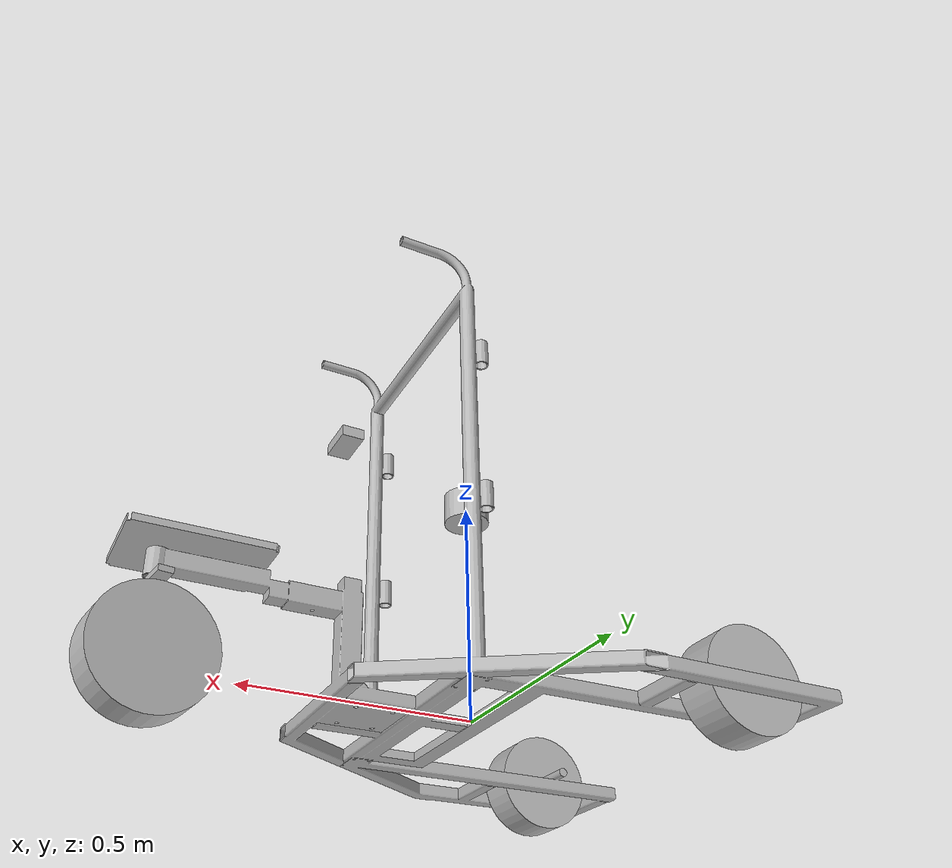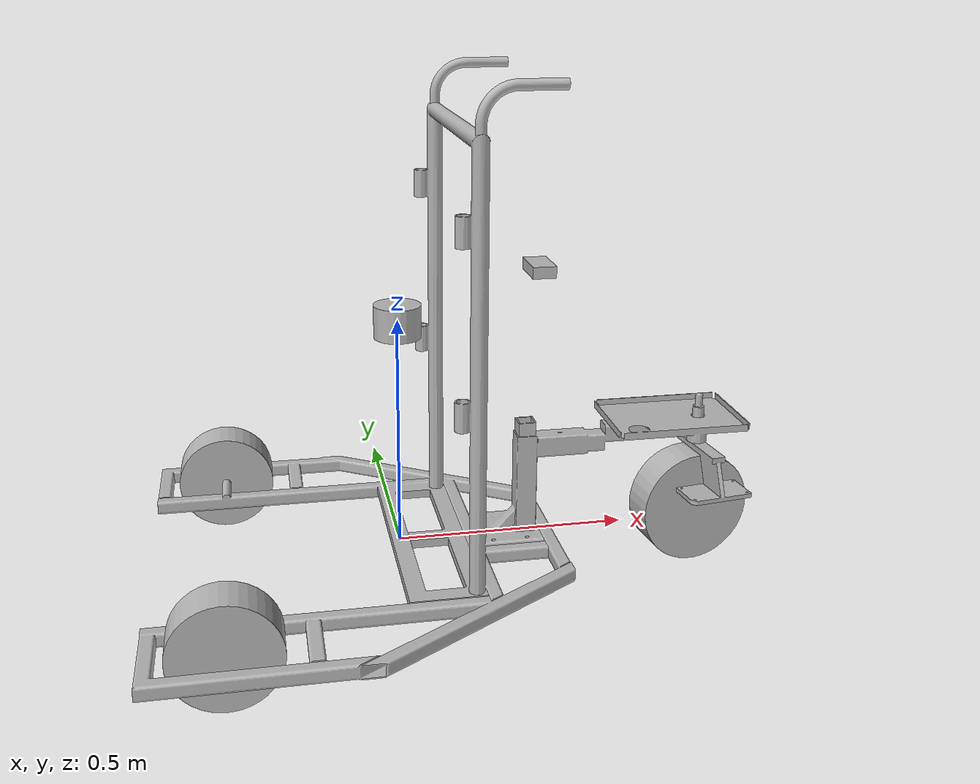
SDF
<sdf version="1.9">
  <model name="my_robot">

    <!-- BASE -->
    <link name="base_link">
      <inertial>
        <pose>0.18001 0 0.14277 0 0 0</pose>
        <mass>6.1354</mass>
        <inertia>
          <ixx>0.09231</ixx>
          <ixy>0.0077966</ixy>
          <ixz>-0.0068618</ixz>
          <iyy>0.095327</iyy>
          <iyz>-5.98e-05</iyz>
          <izz>0.056644</izz>
        </inertia>
      </inertial>
      <collision name="collision">
        <geometry>
          <mesh>
            <uri>file:///home/kisali/fyp_ws/src/robotdesign/meshes/base_link.STL</uri>
          </mesh>
        </geometry>
      </collision>
      <visual name="base_visual">
        <geometry>
          <mesh>
            <uri>file:///home/kisali/fyp_ws/src/robotdesign/meshes/base_link.STL</uri>
          </mesh>
        </geometry>
      </visual>
    </link>

    <!-- LEFT WHEEL -->
    <link name="leftwheel">
      <pose relative_to="leftwheeljoint">0 0 0 0 0 0</pose>
      <collision name="collision">
        <geometry>
          <mesh>
            <uri>file:///home/kisali/fyp_ws/src/robotdesign/meshes/leftwheel.STL</uri>
          </mesh>
        </geometry>
      </collision>
      <visual name="left_visual">
        <geometry>
          <mesh>
            <uri>file:///home/kisali/fyp_ws/src/robotdesign/meshes/leftwheel.STL</uri>
          </mesh>
        </geometry>
      </visual>
    </link>

    <joint name="leftwheeljoint" type="revolute">
      <pose relative_to="base_link">-0.3763 0.42197 0.01 1.5708 0 0</pose>
      <parent>base_link</parent>
      <child>leftwheel</child>
      <axis>
        <xyz>0 0 1</xyz>
	<limit>
          <lower>-1e16</lower>
           <upper>1e16</upper>
	   <effort>10</effort>
	   <velocity>10</velocity>
	</limit>

    <dynamics>
      <damping>0.1</damping>
      <friction>0</friction>
    </dynamics>
      </axis>
    </joint>

    <!-- RIGHT WHEEL -->
    <link name="rightwheel">
      <pose relative_to="rightwheeljoint">0 0 0 0 0 0</pose>
      <collision name="collision">
        <geometry>
          <mesh>
            <uri>file:///home/kisali/fyp_ws/src/robotdesign/meshes/rightwheel.STL</uri>
          </mesh>
        </geometry>
      </collision>
      <visual name="right_visual">
        <geometry>
          <mesh>
            <uri>file:///home/kisali/fyp_ws/src/robotdesign/meshes/rightwheel.STL</uri>
          </mesh>
        </geometry>
      </visual>
    </link>

    <joint name="rightwheeljoint" type="revolute">
      <pose relative_to="base_link">-0.3763 -0.42416 0.01 1.5708 0 0</pose>
      <parent>base_link</parent>
      <child>rightwheel</child>
      <axis>
        <xyz>0 0 -1</xyz>
        <limit>
      <lower>-1e16</lower>
      <upper>1e16</upper>
      <effort>10</effort>
      <velocity>10</velocity>
    </limit>

    <dynamics>
      <damping>0.1</damping>
      <friction>0</friction>
    </dynamics>
      </axis>
    </joint>

    <!-- FRONT -->
    <link name="front">
      <pose relative_to="steering_joint">0 0 0 0 0 0</pose>
      <collision name="collision">
        <geometry>
          <mesh>
            <uri>file:///home/kisali/fyp_ws/src/robotdesign/meshes/front.STL</uri>
          </mesh>
        </geometry>
      </collision>
      <visual name="f_visual">
        <geometry>
          <mesh>
            <uri>file:///home/kisali/fyp_ws/src/robotdesign/meshes/front.STL</uri>
          </mesh>
        </geometry>
      </visual>
    </link>

    <joint name="steering_joint" type="revolute">
      <pose relative_to="base_link">0.67273 0 0.2939 3.1416 0 0</pose>
      <parent>base_link</parent>
      <child>front</child>
      <axis>
        <xyz>0 0 -1</xyz>
        <limit>
  <lower>-1.0472</lower>
  <upper>1.0472</upper>
  <effort>10</effort>
  <velocity>5</velocity>
</limit>
      </axis>
    </joint>

    <!-- FRONT WHEEL -->
    <link name="frontwheel">
      <pose relative_to="front_wheel_joint">0 0 0 0 0 0</pose>
      <collision name="collision">
        <geometry>
          <mesh>
            <uri>file:///home/kisali/fyp_ws/src/robotdesign/meshes/frontwheel.STL</uri>
          </mesh>
        </geometry>
      </collision>
      <visual name="fwvisual">
        <geometry>
          <mesh>
            <uri>file:///home/kisali/fyp_ws/src/robotdesign/meshes/frontwheel.STL</uri>
          </mesh>
        </geometry>
      </visual>
    </link>

    <joint name="front_wheel_joint" type="revolute">
      <pose relative_to="front">-0.0080085 -0.061174 0.26898 -1.5708 0 0</pose>
      <parent>front</parent>
      <child>frontwheel</child>
      <axis>
        <xyz>-0.12981 0 -0.99154</xyz>
            <limit>
      <lower>-1e16</lower>
      <upper>1e16</upper>
      <effort>10</effort>
      <velocity>10</velocity>
    </limit>

    <dynamics>
      <damping>0.1</damping>
      <friction>0</friction>
    </dynamics>
      </axis>
    </joint>

<!-- LIDAR LINK -->
<link name="lidar_link">
  <pose relative_to="base_link">0.0 0 0.5 0 0 0</pose>
  <visual name="lidar_visual">
    <geometry>
      <cylinder>
        <radius>0.05</radius>
        <length>0.07</length>
      </cylinder>
    </geometry>
  </visual>
  <collision name="lidar_collision">
    <geometry>
      <cylinder>
        <radius>0.05</radius>
        <length>0.07</length>
      </cylinder>
    </geometry>
  </collision>
<sensor name="lidar" type="ray">
  <always_on>true</always_on>
  <update_rate>10</update_rate>
  <topic>/scan</topic>

  <ray>
    <scan>
      <horizontal>
        <samples>360</samples>
        <resolution>1</resolution>
        <min_angle>-3.14159</min_angle>
        <max_angle>3.14159</max_angle>
      </horizontal>
    </scan>

    <range>
      <min>0.15</min>
      <max>12.0</max>
      <resolution>0.01</resolution>
    </range>

    <noise>
      <type>gaussian</type>
      <mean>0.0</mean>
      <stddev>0.01</stddev>
    </noise>
  </ray>
</sensor>

</link>

<joint name="lidar_joint" type="fixed">
  <parent>base_link</parent>
  <child>lidar_link</child>
</joint>

<!-- DEPTH CAMERA LINK -->
<link name="camera_link">
  <pose relative_to="base_link">0.3 0 0.6 0 0 0</pose>
  <visual name="camera_visual">
    <geometry>
      <box><size>0.05 0.09 0.025</size></box>
    </geometry>
  </visual>
  <sensor name="depth_camera" type="depth_camera">
    <always_on>true</always_on>
    <update_rate>30</update_rate>
    <topic>/camera/depth/image_raw</topic>
     <camera>
      <horizontal_fov>1.047</horizontal_fov>
      <image>
        <width>640</width>
        <height>480</height>
        <format>R_FLOAT32</format>
      </image>
      <clip>
        <near>0.1</near>
        <far>10.0</far>
      </clip>
      <noise>
        <type>gaussian</type>
        <mean>0.0</mean>
        <stddev>0.005</stddev>
      </noise>
    </camera>
  </sensor>
</link>

<joint name="camera_joint" type="fixed">
  <parent>base_link</parent>
  <child>camera_link</child>
</joint>

<!-- TRICYCLE DRIVE — front wheel drives, steering_joint steers -->
<plugin filename="libgz-sim-diff-drive-system.so"
        name="gz::sim::systems::DiffDrive">
  <left_joint>leftwheeljoint</left_joint>
  <right_joint>rightwheeljoint</right_joint>
  <wheel_separation>0.84613</wheel_separation>
  <wheel_radius>0.1</wheel_radius>
  <topic>cmd_vel</topic>
  <odom_topic>odom</odom_topic>
  <frame_id>odom</frame_id>
  <child_frame_id>base_link</child_frame_id>
  <odom_publish_frequency>10</odom_publish_frequency>
</plugin>
<!-- Required for GPU LiDAR and depth camera to render -->

  </model>
</sdf>
